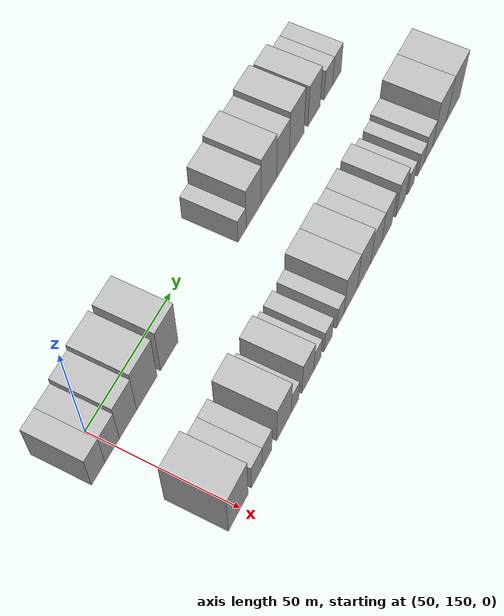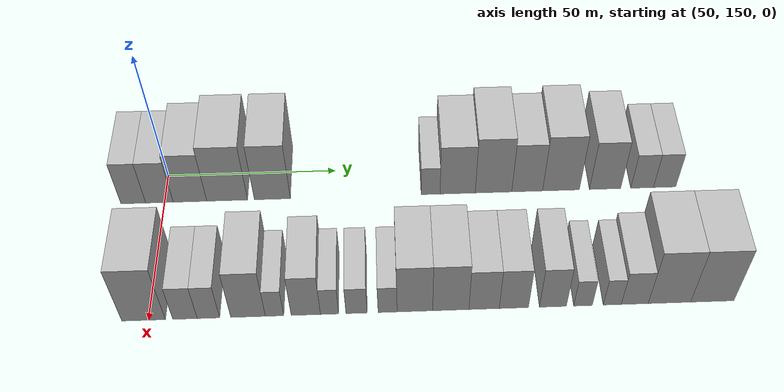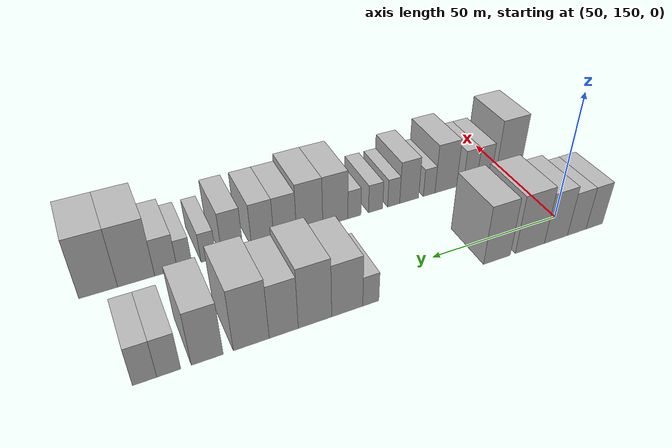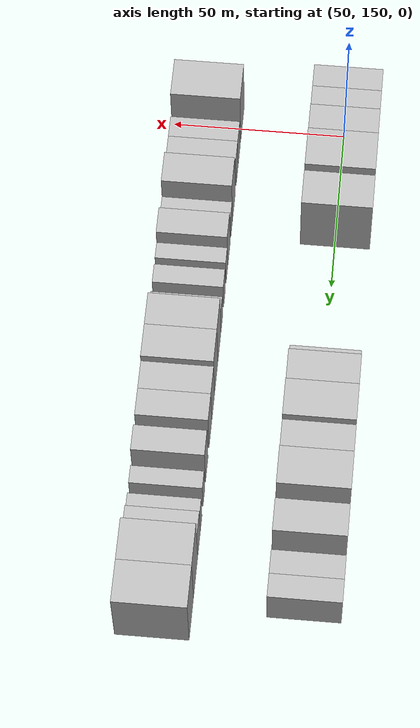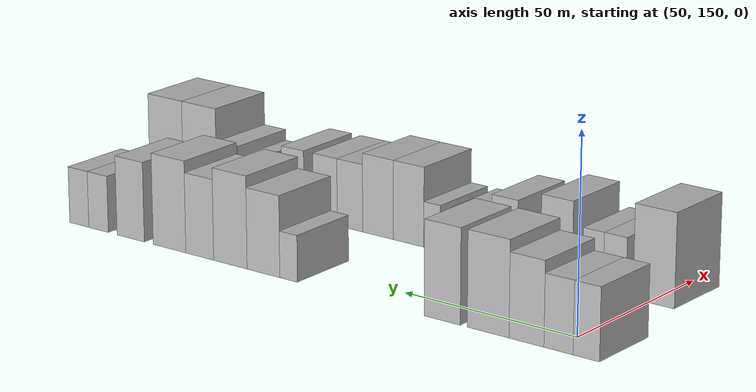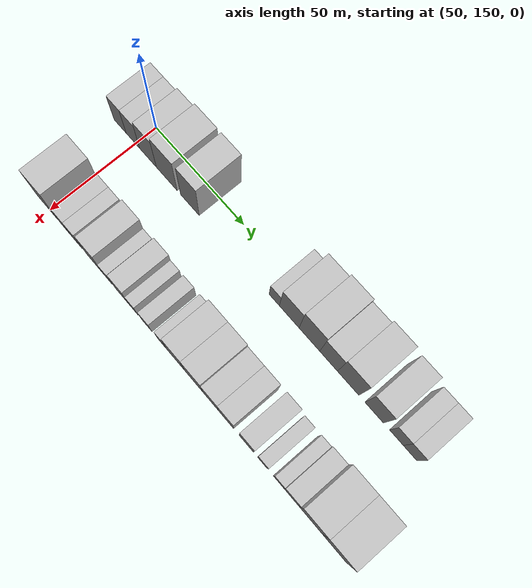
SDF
<sdf version="1.6">
 <world name="default">
  <model name="building_46">
   <static>1</static>
   <pose>50.0000 140.8274 0 0.000000 0.000000 0.000000</pose>
   <link name="link">
    <pose>0 0 9.00 0 0 0</pose>
    <collision name="collision"><geometry><box><size>20.0000 7.2410 18.0000</size></box></geometry></collision>
    <visual name="visual">
     <cast_shadows>0</cast_shadows>
     <geometry><box><size>20.0000 7.2410 18.0000</size></box></geometry>
     <material>
      <script>
       <uri>model://HANNAS_wall/materials/scripts</uri>
       <uri>model://HANNAS_wall/materials/textures</uri>
       <name>vrc/HANNAS_wall</name>
      </script>
     </material>
    </visual>
   </link>
  </model>
  <model name="building_47">
   <static>1</static>
   <pose>50.0000 148.4750 0 0.000000 0.000000 0.000000</pose>
   <link name="link">
    <pose>0 0 9.00 0 0 0</pose>
    <collision name="collision"><geometry><box><size>20.0000 8.0542 18.0000</size></box></geometry></collision>
    <visual name="visual">
     <cast_shadows>0</cast_shadows>
     <geometry><box><size>20.0000 8.0542 18.0000</size></box></geometry>
     <material>
      <script>
       <uri>model://HANNAS_wall/materials/scripts</uri>
       <uri>model://HANNAS_wall/materials/textures</uri>
       <name>vrc/HANNAS_wall</name>
      </script>
     </material>
    </visual>
   </link>
  </model>
  <model name="building_48">
   <static>1</static>
   <pose>50.0000 157.4000 0 0.000000 0.000000 0.000000</pose>
   <link name="link">
    <pose>0 0 10.50 0 0 0</pose>
    <collision name="collision"><geometry><box><size>20.0000 9.7958 21.0000</size></box></geometry></collision>
    <visual name="visual">
     <cast_shadows>0</cast_shadows>
     <geometry><box><size>20.0000 9.7958 21.0000</size></box></geometry>
     <material>
      <script>
       <uri>model://HANNAS_wall/materials/scripts</uri>
       <uri>model://HANNAS_wall/materials/textures</uri>
       <name>vrc/HANNAS_wall</name>
      </script>
     </material>
    </visual>
   </link>
  </model>
  <model name="building_49">
   <static>1</static>
   <pose>50.0000 168.2765 0 0.000000 0.000000 0.000000</pose>
   <link name="link">
    <pose>0 0 12.00 0 0 0</pose>
    <collision name="collision"><geometry><box><size>20.0000 11.9573 24.0000</size></box></geometry></collision>
    <visual name="visual">
     <cast_shadows>0</cast_shadows>
     <geometry><box><size>20.0000 11.9573 24.0000</size></box></geometry>
     <material>
      <script>
       <uri>model://HANNAS_wall/materials/scripts</uri>
       <uri>model://HANNAS_wall/materials/textures</uri>
       <name>vrc/HANNAS_wall</name>
      </script>
     </material>
    </visual>
   </link>
  </model>
  <model name="building_50">
   <static>1</static>
   <pose>50.0000 181.5439 0 0.000000 0.000000 0.000000</pose>
   <link name="link">
    <pose>0 0 12.00 0 0 0</pose>
    <collision name="collision"><geometry><box><size>20.0000 10.5775 24.0000</size></box></geometry></collision>
    <visual name="visual">
     <cast_shadows>0</cast_shadows>
     <geometry><box><size>20.0000 10.5775 24.0000</size></box></geometry>
     <material>
      <script>
       <uri>model://HANNAS_wall/materials/scripts</uri>
       <uri>model://HANNAS_wall/materials/textures</uri>
       <name>vrc/HANNAS_wall</name>
      </script>
     </material>
    </visual>
   </link>
  </model>
  <model name="building_51">
   <static>1</static>
   <pose>50.0000 228.1648 0 0.000000 0.000000 0.000000</pose>
   <link name="link">
    <pose>0 0 6.00 0 0 0</pose>
    <collision name="collision"><geometry><box><size>20.0000 5.5547 12.0000</size></box></geometry></collision>
    <visual name="visual">
     <cast_shadows>0</cast_shadows>
     <geometry><box><size>20.0000 5.5547 12.0000</size></box></geometry>
     <material>
      <script>
       <uri>model://HANNAS_wall/materials/scripts</uri>
       <uri>model://HANNAS_wall/materials/textures</uri>
       <name>vrc/HANNAS_wall</name>
      </script>
     </material>
    </visual>
   </link>
  </model>
  <model name="building_52">
   <static>1</static>
   <pose>50.0000 236.1582 0 0.000000 0.000000 0.000000</pose>
   <link name="link">
    <pose>0 0 10.50 0 0 0</pose>
    <collision name="collision"><geometry><box><size>20.0000 10.4321 21.0000</size></box></geometry></collision>
    <visual name="visual">
     <cast_shadows>0</cast_shadows>
     <geometry><box><size>20.0000 10.4321 21.0000</size></box></geometry>
     <material>
      <script>
       <uri>model://HANNAS_wall/materials/scripts</uri>
       <uri>model://HANNAS_wall/materials/textures</uri>
       <name>vrc/HANNAS_wall</name>
      </script>
     </material>
    </visual>
   </link>
  </model>
  <model name="building_53">
   <static>1</static>
   <pose>50.0000 246.7949 0 0.000000 0.000000 0.000000</pose>
   <link name="link">
    <pose>0 0 12.00 0 0 0</pose>
    <collision name="collision"><geometry><box><size>20.0000 10.8414 24.0000</size></box></geometry></collision>
    <visual name="visual">
     <cast_shadows>0</cast_shadows>
     <geometry><box><size>20.0000 10.8414 24.0000</size></box></geometry>
     <material>
      <script>
       <uri>model://HANNAS_wall/materials/scripts</uri>
       <uri>model://HANNAS_wall/materials/textures</uri>
       <name>vrc/HANNAS_wall</name>
      </script>
     </material>
    </visual>
   </link>
  </model>
  <model name="building_54">
   <static>1</static>
   <pose>50.0000 256.7974 0 0.000000 0.000000 0.000000</pose>
   <link name="link">
    <pose>0 0 10.50 0 0 0</pose>
    <collision name="collision"><geometry><box><size>20.0000 9.1635 21.0000</size></box></geometry></collision>
    <visual name="visual">
     <cast_shadows>0</cast_shadows>
     <geometry><box><size>20.0000 9.1635 21.0000</size></box></geometry>
     <material>
      <script>
       <uri>model://HANNAS_wall/materials/scripts</uri>
       <uri>model://HANNAS_wall/materials/textures</uri>
       <name>vrc/HANNAS_wall</name>
      </script>
     </material>
    </visual>
   </link>
  </model>
  <model name="building_55">
   <static>1</static>
   <pose>50.0000 266.8488 0 0.000000 0.000000 0.000000</pose>
   <link name="link">
    <pose>0 0 12.00 0 0 0</pose>
    <collision name="collision"><geometry><box><size>20.0000 10.9392 24.0000</size></box></geometry></collision>
    <visual name="visual">
     <cast_shadows>0</cast_shadows>
     <geometry><box><size>20.0000 10.9392 24.0000</size></box></geometry>
     <material>
      <script>
       <uri>model://HANNAS_wall/materials/scripts</uri>
       <uri>model://HANNAS_wall/materials/textures</uri>
       <name>vrc/HANNAS_wall</name>
      </script>
     </material>
    </visual>
   </link>
  </model>
  <model name="building_56">
   <static>1</static>
   <pose>50.0000 279.9797 0 0.000000 0.000000 0.000000</pose>
   <link name="link">
    <pose>0 0 10.50 0 0 0</pose>
    <collision name="collision"><geometry><box><size>20.0000 9.3226 21.0000</size></box></geometry></collision>
    <visual name="visual">
     <cast_shadows>0</cast_shadows>
     <geometry><box><size>20.0000 9.3226 21.0000</size></box></geometry>
     <material>
      <script>
       <uri>model://HANNAS_wall/materials/scripts</uri>
       <uri>model://HANNAS_wall/materials/textures</uri>
       <name>vrc/HANNAS_wall</name>
      </script>
     </material>
    </visual>
   </link>
  </model>
  <model name="building_57">
   <static>1</static>
   <pose>50.0000 291.0254 0 0.000000 0.000000 0.000000</pose>
   <link name="link">
    <pose>0 0 7.50 0 0 0</pose>
    <collision name="collision"><geometry><box><size>20.0000 6.7688 15.0000</size></box></geometry></collision>
    <visual name="visual">
     <cast_shadows>0</cast_shadows>
     <geometry><box><size>20.0000 6.7688 15.0000</size></box></geometry>
     <material>
      <script>
       <uri>model://HANNAS_wall/materials/scripts</uri>
       <uri>model://HANNAS_wall/materials/textures</uri>
       <name>vrc/HANNAS_wall</name>
      </script>
     </material>
    </visual>
   </link>
  </model>
  <model name="building_58">
   <static>1</static>
   <pose>50.0000 297.7569 0 0.000000 0.000000 0.000000</pose>
   <link name="link">
    <pose>0 0 7.50 0 0 0</pose>
    <collision name="collision"><geometry><box><size>20.0000 6.6942 15.0000</size></box></geometry></collision>
    <visual name="visual">
     <cast_shadows>0</cast_shadows>
     <geometry><box><size>20.0000 6.6942 15.0000</size></box></geometry>
     <material>
      <script>
       <uri>model://HANNAS_wall/materials/scripts</uri>
       <uri>model://HANNAS_wall/materials/textures</uri>
       <name>vrc/HANNAS_wall</name>
      </script>
     </material>
    </visual>
   </link>
  </model>
  <model name="building_109">
   <static>1</static>
   <pose>90.0000 148.6419 0 0.000000 0.000000 0.000000</pose>
   <link name="link">
    <pose>0 0 12.00 0 0 0</pose>
    <collision name="collision"><geometry><box><size>20.0000 11.7071 24.0000</size></box></geometry></collision>
    <visual name="visual">
     <cast_shadows>0</cast_shadows>
     <geometry><box><size>20.0000 11.7071 24.0000</size></box></geometry>
     <material>
      <script>
       <uri>model://HANNAS_wall/materials/scripts</uri>
       <uri>model://HANNAS_wall/materials/textures</uri>
       <name>vrc/HANNAS_wall</name>
      </script>
     </material>
    </visual>
   </link>
  </model>
  <model name="building_110">
   <static>1</static>
   <pose>90.0000 159.7817 0 0.000000 0.000000 0.000000</pose>
   <link name="link">
    <pose>0 0 7.50 0 0 0</pose>
    <collision name="collision"><geometry><box><size>20.0000 6.5724 15.0000</size></box></geometry></collision>
    <visual name="visual">
     <cast_shadows>0</cast_shadows>
     <geometry><box><size>20.0000 6.5724 15.0000</size></box></geometry>
     <material>
      <script>
       <uri>model://HANNAS_wall/materials/scripts</uri>
       <uri>model://HANNAS_wall/materials/textures</uri>
       <name>vrc/HANNAS_wall</name>
      </script>
     </material>
    </visual>
   </link>
  </model>
  <model name="building_111">
   <static>1</static>
   <pose>90.0000 166.0909 0 0.000000 0.000000 0.000000</pose>
   <link name="link">
    <pose>0 0 7.50 0 0 0</pose>
    <collision name="collision"><geometry><box><size>20.0000 6.0460 15.0000</size></box></geometry></collision>
    <visual name="visual">
     <cast_shadows>0</cast_shadows>
     <geometry><box><size>20.0000 6.0460 15.0000</size></box></geometry>
     <material>
      <script>
       <uri>model://HANNAS_wall/materials/scripts</uri>
       <uri>model://HANNAS_wall/materials/textures</uri>
       <name>vrc/HANNAS_wall</name>
      </script>
     </material>
    </visual>
   </link>
  </model>
  <model name="building_112">
   <static>1</static>
   <pose>90.0000 176.7826 0 0.000000 0.000000 0.000000</pose>
   <link name="link">
    <pose>0 0 10.50 0 0 0</pose>
    <collision name="collision"><geometry><box><size>20.0000 9.3373 21.0000</size></box></geometry></collision>
    <visual name="visual">
     <cast_shadows>0</cast_shadows>
     <geometry><box><size>20.0000 9.3373 21.0000</size></box></geometry>
     <material>
      <script>
       <uri>model://HANNAS_wall/materials/scripts</uri>
       <uri>model://HANNAS_wall/materials/textures</uri>
       <name>vrc/HANNAS_wall</name>
      </script>
     </material>
    </visual>
   </link>
  </model>
  <model name="building_113">
   <static>1</static>
   <pose>90.0000 183.9390 0 0.000000 0.000000 0.000000</pose>
   <link name="link">
    <pose>0 0 6.00 0 0 0</pose>
    <collision name="collision"><geometry><box><size>20.0000 4.9755 12.0000</size></box></geometry></collision>
    <visual name="visual">
     <cast_shadows>0</cast_shadows>
     <geometry><box><size>20.0000 4.9755 12.0000</size></box></geometry>
     <material>
      <script>
       <uri>model://HANNAS_wall/materials/scripts</uri>
       <uri>model://HANNAS_wall/materials/textures</uri>
       <name>vrc/HANNAS_wall</name>
      </script>
     </material>
    </visual>
   </link>
  </model>
  <model name="building_114">
   <static>1</static>
   <pose>90.0000 192.3892 0 0.000000 0.000000 0.000000</pose>
   <link name="link">
    <pose>0 0 9.00 0 0 0</pose>
    <collision name="collision"><geometry><box><size>20.0000 7.9249 18.0000</size></box></geometry></collision>
    <visual name="visual">
     <cast_shadows>0</cast_shadows>
     <geometry><box><size>20.0000 7.9249 18.0000</size></box></geometry>
     <material>
      <script>
       <uri>model://HANNAS_wall/materials/scripts</uri>
       <uri>model://HANNAS_wall/materials/textures</uri>
       <name>vrc/HANNAS_wall</name>
      </script>
     </material>
    </visual>
   </link>
  </model>
  <model name="building_115">
   <static>1</static>
   <pose>90.0000 198.8199 0 0.000000 0.000000 0.000000</pose>
   <link name="link">
    <pose>0 0 6.00 0 0 0</pose>
    <collision name="collision"><geometry><box><size>20.0000 4.9365 12.0000</size></box></geometry></collision>
    <visual name="visual">
     <cast_shadows>0</cast_shadows>
     <geometry><box><size>20.0000 4.9365 12.0000</size></box></geometry>
     <material>
      <script>
       <uri>model://HANNAS_wall/materials/scripts</uri>
       <uri>model://HANNAS_wall/materials/textures</uri>
       <name>vrc/HANNAS_wall</name>
      </script>
     </material>
    </visual>
   </link>
  </model>
  <model name="building_116">
   <static>1</static>
   <pose>90.0000 206.1501 0 0.000000 0.000000 0.000000</pose>
   <link name="link">
    <pose>0 0 6.00 0 0 0</pose>
    <collision name="collision"><geometry><box><size>20.0000 5.7239 12.0000</size></box></geometry></collision>
    <visual name="visual">
     <cast_shadows>0</cast_shadows>
     <geometry><box><size>20.0000 5.7239 12.0000</size></box></geometry>
     <material>
      <script>
       <uri>model://HANNAS_wall/materials/scripts</uri>
       <uri>model://HANNAS_wall/materials/textures</uri>
       <name>vrc/HANNAS_wall</name>
      </script>
     </material>
    </visual>
   </link>
  </model>
  <model name="building_117">
   <static>1</static>
   <pose>90.0000 214.5859 0 0.000000 0.000000 0.000000</pose>
   <link name="link">
    <pose>0 0 6.00 0 0 0</pose>
    <collision name="collision"><geometry><box><size>20.0000 5.1477 12.0000</size></box></geometry></collision>
    <visual name="visual">
     <cast_shadows>0</cast_shadows>
     <geometry><box><size>20.0000 5.1477 12.0000</size></box></geometry>
     <material>
      <script>
       <uri>model://HANNAS_wall/materials/scripts</uri>
       <uri>model://HANNAS_wall/materials/textures</uri>
       <name>vrc/HANNAS_wall</name>
      </script>
     </material>
    </visual>
   </link>
  </model>
  <model name="building_118">
   <static>1</static>
   <pose>90.0000 221.9915 0 0.000000 0.000000 0.000000</pose>
   <link name="link">
    <pose>0 0 10.50 0 0 0</pose>
    <collision name="collision"><geometry><box><size>20.0000 9.6636 21.0000</size></box></geometry></collision>
    <visual name="visual">
     <cast_shadows>0</cast_shadows>
     <geometry><box><size>20.0000 9.6636 21.0000</size></box></geometry>
     <material>
      <script>
       <uri>model://HANNAS_wall/materials/scripts</uri>
       <uri>model://HANNAS_wall/materials/textures</uri>
       <name>vrc/HANNAS_wall</name>
      </script>
     </material>
    </visual>
   </link>
  </model>
  <model name="building_119">
   <static>1</static>
   <pose>90.0000 231.7588 0 0.000000 0.000000 0.000000</pose>
   <link name="link">
    <pose>0 0 10.50 0 0 0</pose>
    <collision name="collision"><geometry><box><size>20.0000 9.8710 21.0000</size></box></geometry></collision>
    <visual name="visual">
     <cast_shadows>0</cast_shadows>
     <geometry><box><size>20.0000 9.8710 21.0000</size></box></geometry>
     <material>
      <script>
       <uri>model://HANNAS_wall/materials/scripts</uri>
       <uri>model://HANNAS_wall/materials/textures</uri>
       <name>vrc/HANNAS_wall</name>
      </script>
     </material>
    </visual>
   </link>
  </model>
  <model name="building_120">
   <static>1</static>
   <pose>90.0000 240.8363 0 0.000000 0.000000 0.000000</pose>
   <link name="link">
    <pose>0 0 9.00 0 0 0</pose>
    <collision name="collision"><geometry><box><size>20.0000 8.2839 18.0000</size></box></geometry></collision>
    <visual name="visual">
     <cast_shadows>0</cast_shadows>
     <geometry><box><size>20.0000 8.2839 18.0000</size></box></geometry>
     <material>
      <script>
       <uri>model://HANNAS_wall/materials/scripts</uri>
       <uri>model://HANNAS_wall/materials/textures</uri>
       <name>vrc/HANNAS_wall</name>
      </script>
     </material>
    </visual>
   </link>
  </model>
  <model name="building_121">
   <static>1</static>
   <pose>90.0000 248.9727 0 0.000000 0.000000 0.000000</pose>
   <link name="link">
    <pose>0 0 9.00 0 0 0</pose>
    <collision name="collision"><geometry><box><size>20.0000 7.9890 18.0000</size></box></geometry></collision>
    <visual name="visual">
     <cast_shadows>0</cast_shadows>
     <geometry><box><size>20.0000 7.9890 18.0000</size></box></geometry>
     <material>
      <script>
       <uri>model://HANNAS_wall/materials/scripts</uri>
       <uri>model://HANNAS_wall/materials/textures</uri>
       <name>vrc/HANNAS_wall</name>
      </script>
     </material>
    </visual>
   </link>
  </model>
  <model name="building_122">
   <static>1</static>
   <pose>90.0000 259.6583 0 0.000000 0.000000 0.000000</pose>
   <link name="link">
    <pose>0 0 9.00 0 0 0</pose>
    <collision name="collision"><geometry><box><size>20.0000 7.3822 18.0000</size></box></geometry></collision>
    <visual name="visual">
     <cast_shadows>0</cast_shadows>
     <geometry><box><size>20.0000 7.3822 18.0000</size></box></geometry>
     <material>
      <script>
       <uri>model://HANNAS_wall/materials/scripts</uri>
       <uri>model://HANNAS_wall/materials/textures</uri>
       <name>vrc/HANNAS_wall</name>
      </script>
     </material>
    </visual>
   </link>
  </model>
  <model name="building_123">
   <static>1</static>
   <pose>90.0000 267.8997 0 0.000000 0.000000 0.000000</pose>
   <link name="link">
    <pose>0 0 6.00 0 0 0</pose>
    <collision name="collision"><geometry><box><size>20.0000 5.1006 12.0000</size></box></geometry></collision>
    <visual name="visual">
     <cast_shadows>0</cast_shadows>
     <geometry><box><size>20.0000 5.1006 12.0000</size></box></geometry>
     <material>
      <script>
       <uri>model://HANNAS_wall/materials/scripts</uri>
       <uri>model://HANNAS_wall/materials/textures</uri>
       <name>vrc/HANNAS_wall</name>
      </script>
     </material>
    </visual>
   </link>
  </model>
  <model name="building_124">
   <static>1</static>
   <pose>90.0000 275.9193 0 0.000000 0.000000 0.000000</pose>
   <link name="link">
    <pose>0 0 6.00 0 0 0</pose>
    <collision name="collision"><geometry><box><size>20.0000 4.9385 12.0000</size></box></geometry></collision>
    <visual name="visual">
     <cast_shadows>0</cast_shadows>
     <geometry><box><size>20.0000 4.9385 12.0000</size></box></geometry>
     <material>
      <script>
       <uri>model://HANNAS_wall/materials/scripts</uri>
       <uri>model://HANNAS_wall/materials/textures</uri>
       <name>vrc/HANNAS_wall</name>
      </script>
     </material>
    </visual>
   </link>
  </model>
  <model name="building_125">
   <static>1</static>
   <pose>90.0000 282.0717 0 0.000000 0.000000 0.000000</pose>
   <link name="link">
    <pose>0 0 7.50 0 0 0</pose>
    <collision name="collision"><geometry><box><size>20.0000 7.3663 15.0000</size></box></geometry></collision>
    <visual name="visual">
     <cast_shadows>0</cast_shadows>
     <geometry><box><size>20.0000 7.3663 15.0000</size></box></geometry>
     <material>
      <script>
       <uri>model://HANNAS_wall/materials/scripts</uri>
       <uri>model://HANNAS_wall/materials/textures</uri>
       <name>vrc/HANNAS_wall</name>
      </script>
     </material>
    </visual>
   </link>
  </model>
  <model name="building_126">
   <static>1</static>
   <pose>90.0000 291.6283 0 0.000000 0.000000 0.000000</pose>
   <link name="link">
    <pose>0 0 12.00 0 0 0</pose>
    <collision name="collision"><geometry><box><size>20.0000 11.7469 24.0000</size></box></geometry></collision>
    <visual name="visual">
     <cast_shadows>0</cast_shadows>
     <geometry><box><size>20.0000 11.7469 24.0000</size></box></geometry>
     <material>
      <script>
       <uri>model://HANNAS_wall/materials/scripts</uri>
       <uri>model://HANNAS_wall/materials/textures</uri>
       <name>vrc/HANNAS_wall</name>
      </script>
     </material>
    </visual>
   </link>
  </model>
  <model name="building_127">
   <static>1</static>
   <pose>90.0000 303.4685 0 0.000000 0.000000 0.000000</pose>
   <link name="link">
    <pose>0 0 12.00 0 0 0</pose>
    <collision name="collision"><geometry><box><size>20.0000 11.9335 24.0000</size></box></geometry></collision>
    <visual name="visual">
     <cast_shadows>0</cast_shadows>
     <geometry><box><size>20.0000 11.9335 24.0000</size></box></geometry>
     <material>
      <script>
       <uri>model://HANNAS_wall/materials/scripts</uri>
       <uri>model://HANNAS_wall/materials/textures</uri>
       <name>vrc/HANNAS_wall</name>
      </script>
     </material>
    </visual>
   </link>
  </model>
 </world>
</sdf>
